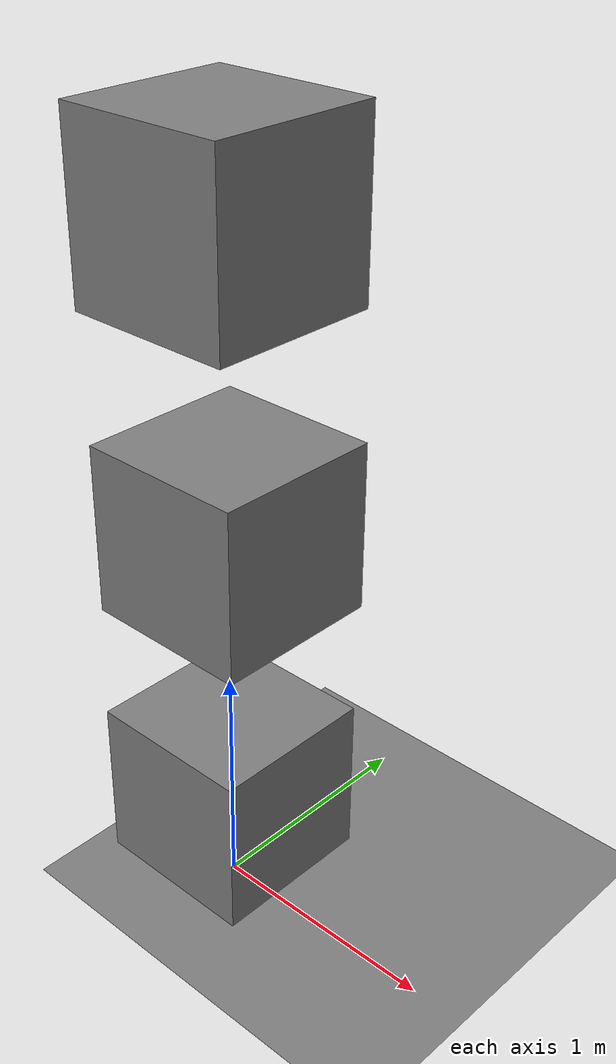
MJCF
<mujoco model="stack">
  <compiler angle="radian"/>
  <option timestep="0.005" gravity="0 0 -9.81"/>

  <worldbody>
    <geom name="ground" type="plane" friction="0.6"/>

    <body name="bottom" pos="0 0 0.5">
      <freejoint name="bottom_root"/>
      <geom name="bottom_box" type="box" size="0.35 0.35 0.35" friction="0.6" mass="1.2"/>
    </body>

    <body name="middle" pos="0.02 0 1.7">
      <freejoint name="middle_root"/>
      <geom name="middle_box" type="box" size="0.35 0.35 0.35" friction="0.6" mass="0.9"/>
    </body>

    <body name="top" pos="0 0 2.9">
      <freejoint name="top_root"/>
      <geom name="top_box" type="box" size="0.35 0.35 0.35" friction="0.6" mass="1.5"/>
      <!-- newt extension: initial body-frame angular velocity mirroring
           the "velocity" field in stack.json. See docs/mjcf.md. -->
      <velocity angular_body="0 0.3 0"/>
    </body>
  </worldbody>
</mujoco>
